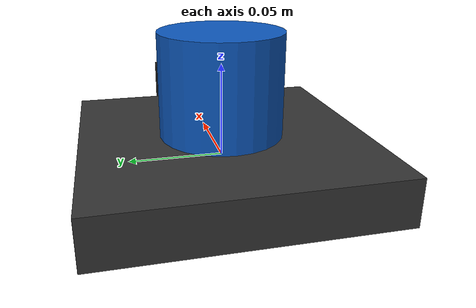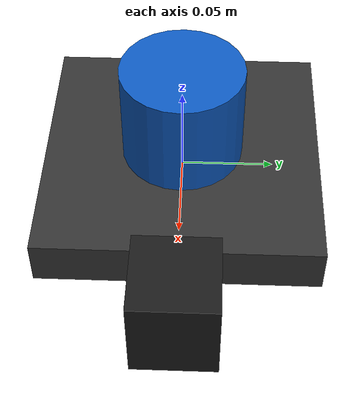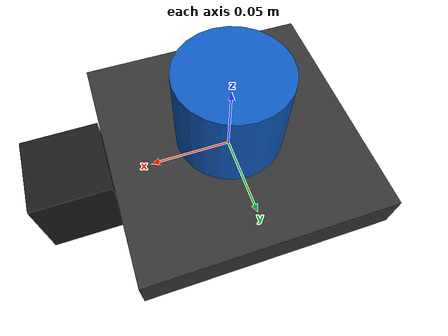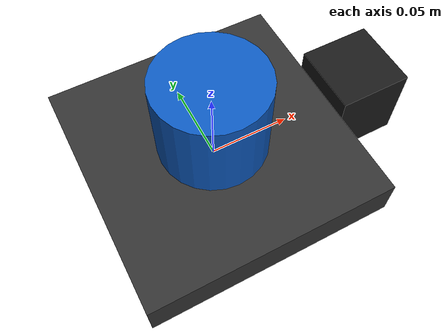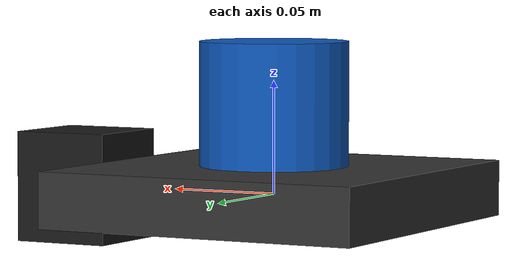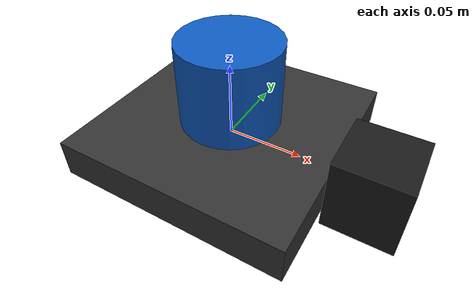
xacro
<?xml version="1.0"?>
<robot xmlns:xacro="http://www.ros.org/wiki/xacro" name="sensor_mount">

  <!-- ═══════════════════════════════════════════════════
       PROPERTIES
       Adjust these values to match your physical mount
  ════════════════════════════════════════════════════ -->

  <!-- Mid360 dimensions (approx.) -->
  <xacro:property name="mid360_radius"   value="0.033"/>  <!-- 77mm diameter -->
  <xacro:property name="mid360_height"   value="0.055"/>  <!-- 63.7mm height  -->

  <!-- VN300 dimensions (approx.) -->
  <xacro:property name="vn300_x"         value="0.0360"/>  <!-- 36mm length -->
  <xacro:property name="vn300_y"         value="0.0330"/>  <!-- 33mm width  -->
  <xacro:property name="vn300_z"         value="0.0090"/>  <!-- 9mm height  -->

  <!-- Mount plate (optional thin plate between them) -->
  <xacro:property name="plate_x"         value="0.150"/>
  <xacro:property name="plate_y"         value="0.150"/>
  <xacro:property name="plate_z"         value="0.025"/>

  <!-- Z offset: VN300 sits just below the plate, centred under the Mid360 -->
  <!-- total stack from base_link up:                                       -->
  <!--   0.0 → base_link                                                    -->
  <!--   plate sits at z=0                                                  -->
  <!--   mid360 optical centre is at z = plate_z/2 + mid360_height/2       -->
  <!--   vn300 centre is at z = -(plate_z/2 + vn300_z/2)  (below plate)    -->

  <xacro:property name="mid360_z_offset"
      value="${plate_z/2 + mid360_height/2}"/>

  <xacro:property name="vn300_z_offset"
      value="${-(plate_z/2 + vn300_z/2)}"/>

  <!-- Camera dimensions -->
  <xacro:property name="cam_x"  value="0.045"/>  <!-- 25mm depth  -->
  <xacro:property name="cam_y"  value="0.045"/>  <!-- 60mm width  -->
  <xacro:property name="cam_z"  value="0.050"/>  <!-- 25mm height -->

  <!-- ═══════════════════════════════════════════════════
       MATERIALS
  ════════════════════════════════════════════════════ -->

  <material name="dark_grey">
    <color rgba="0.2 0.2 0.2 1.0"/>
  </material>

  <material name="light_grey">
    <color rgba="0.6 0.6 0.6 1.0"/>
  </material>

  <material name="red">
    <color rgba="1 0.1 0.1 1"/>
  </material>

  <material name="livox_blue">
    <color rgba="0.05 0.35 0.75 1.0"/>
  </material>

  <material name="black">
    <color rgba="0.1 0.1 0.1 1.0"/>
  </material>

  <!-- ═══════════════════════════════════════════════════
       BASE LINK  (root of the sensor assembly)
  ════════════════════════════════════════════════════ -->

  <link name="base_link"/>

  <!-- ═══════════════════════════════════════════════════
       MOUNT PLATE
  ════════════════════════════════════════════════════ -->

  <joint name="plate_joint" type="fixed">
    <parent link="base_link"/>
    <child  link="mount_plate"/>
    <origin xyz="0 0 0" rpy="0 0 0"/>
  </joint>

  <link name="mount_plate">
    <visual>
      <origin xyz="0 0 0" rpy="0 0 0"/>
      <geometry>
        <box size="${plate_x} ${plate_y} ${plate_z}"/>
      </geometry>
      <material name="dark_grey"/>
    </visual>
    <collision>
      <origin xyz="0 0 0" rpy="0 0 0"/>
      <geometry>
        <box size="${plate_x} ${plate_y} ${plate_z}"/>
      </geometry>
    </collision>
    <inertial>
      <mass value="0.05"/>
      <origin xyz="0 0 0" rpy="0 0 0"/>
      <inertia ixx="5e-6" ixy="0" ixz="0"
               iyy="5e-6" iyz="0"
               izz="8e-6"/>
    </inertial>
  </link>

  <joint name="mid360_joint" type="fixed">
    <parent link="mount_plate"/>
    <child  link="mid360_link"/>
    <origin xyz="0 0 ${mid360_z_offset}" rpy="0 0 0"/>
  </joint>

  <link name="mid360_link">
    <visual>
      <origin xyz="0 0 0" rpy="0 0 0"/>
      <geometry>
        <cylinder radius="${mid360_radius}" length="${mid360_height}"/>
      </geometry>
      <material name="livox_blue"/>
    </visual>
    <collision>
      <origin xyz="0 0 0" rpy="0 0 0"/>
      <geometry>
        <cylinder radius="${mid360_radius}" length="${mid360_height}"/>
      </geometry>
    </collision>
    <inertial>
      <mass value="0.265"/>   <!-- Mid360 datasheet: 265 g -->
      <origin xyz="0 0 0" rpy="0 0 0"/>
      <inertia ixx="3e-4" ixy="0" ixz="0"
               iyy="3e-4" iyz="0"
               izz="5e-4"/>
    </inertial>
  </link>

  <!--
    Separate optical/sensor frame for the Mid360.
    RTABMap and the Livox driver reference this frame.
    Placed at the top face of the cylinder (where the window is).
  -->
  <joint name="mid360_sensor_joint" type="fixed">
    <parent link="mid360_link"/>
    <child  link="livox_frame"/>
    <origin xyz="0 0 ${mid360_height/2}" rpy="0 0 0"/>
  </joint>

  <link name="livox_frame"/>

    <joint name="camera_joint" type="fixed">
    <parent link="mount_plate"/>
    <child  link="camera_link"/>
    <!--
      x = -(half plate + half camera body)  →  flush with back face
      y = 0  (centred)
      z = 0  (centred on plate thickness)
      yaw = pi  →  lens faces backward (-X direction)
    -->
    <origin xyz="${(plate_x/2 + cam_x/2)} 0 0" rpy="0 0 0"/>
  </joint>

  <link name="camera_link">
    <visual>
      <origin xyz="0 0 0" rpy="0 0 0"/>
      <geometry>
        <box size="${cam_x} ${cam_y} ${cam_z}"/>
      </geometry>
      <material name="black"/>
    </visual>
    <collision>
      <origin xyz="0 0 0" rpy="0 0 0"/>
      <geometry>
        <box size="${cam_x} ${cam_y} ${cam_z}"/>
      </geometry>
    </collision>
    <inertial>
      <mass value="0.030"/>
      <origin xyz="0 0 0" rpy="0 0 0"/>
      <inertia ixx="1e-6" ixy="0" ixz="0"
               iyy="1e-6" iyz="0"
               izz="1e-6"/>
    </inertial>
  </link>

    <!--
    Optical frame — used by image_pipeline, RTABMap, etc.
    ROS convention: Z forward, X right, Y down.
    Placed at the front face of the camera body (lens position).
  -->
  <joint name="camera_optical_joint" type="fixed">
    <parent link="camera_link"/>
    <child  link="camera_optical_frame"/>
    <origin xyz="${cam_x/2} 0 0" rpy="0 0 0"/>
  </joint>

  <link name="camera_optical_frame"/>

</robot>
